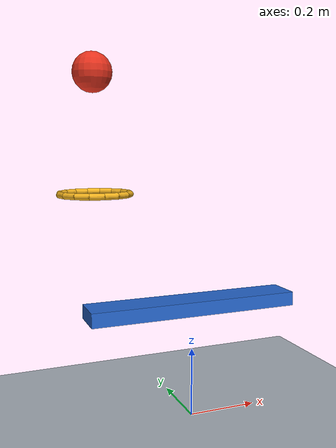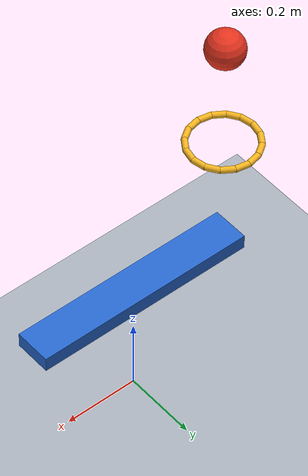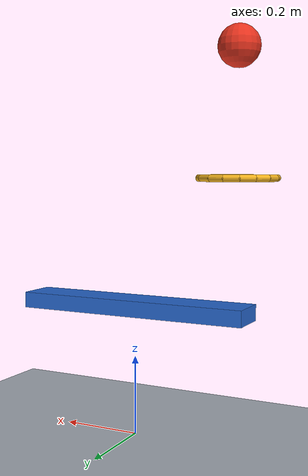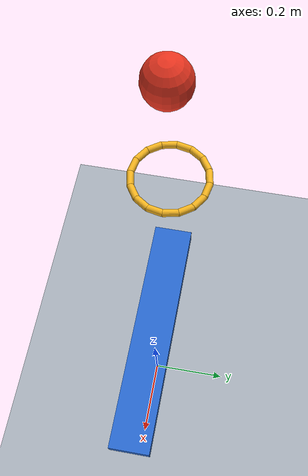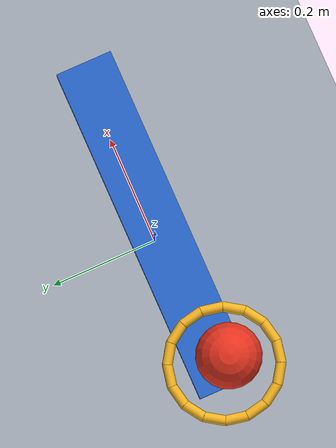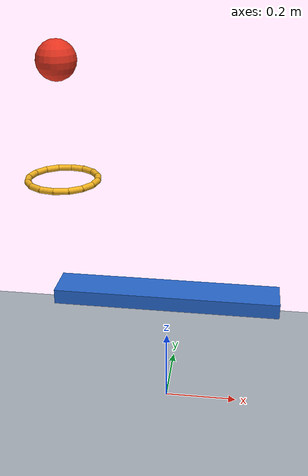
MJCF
<mujoco model="ball_ring_lever">
  <compiler angle="radian" autolimits="true"/>
  <option timestep="0.002" gravity="0 0 -9.81" integrator="implicitfast" solver="Newton" iterations="80" cone="elliptic"/>

  <visual>
    <headlight ambient="0.4 0.4 0.4" diffuse="0.7 0.7 0.7" specular="0.2 0.2 0.2"/>
  </visual>

  <worldbody>
    <light name="overhead_light" pos="0 -1 3" dir="0 0 -1"/>
    <camera name="overview" pos="1.5 -2 1.4" xyaxes="0.8 0.6 0 -0.3 0.4 0.8660254"/>

    <geom name="floor" type="plane" pos="0 0 0" size="3 3 0.1" friction="0.72 0.005 0.005" condim="6" solref="0.01 0.71565" solimp="0.99 0.99 0.001" rgba="0.65 0.68 0.72 1"/>

    <!-- Ball-center heights:
         initially 0.95 m, ring plane 0.65 m, first lever contact 0.40 m.
         Thus the vertical travel is 0.30 m to the ring, then another 0.25 m. -->
    <body name="ball1" pos="-0.27 0 0.95">
      <freejoint name="ball1_free"/>
      <geom name="ball1_sphere" type="sphere" size="0.05" mass="0.20" friction="0.72 0.005 0.005" condim="6" solref="0.01 0.71565" solimp="0.99 0.99 0.001" rgba="0.9 0.2 0.12 1"/>
    </body>

    <!-- Fixed horizontal ring: sixteen capsule segments.
         Centerline circumradius = 0.09 m.
         Tube radius = 0.09*cos(pi/16) - 0.08 m.
         The minimum clear diameter is therefore 0.16 m. -->
    <body name="ring1" pos="-0.27 0 0.65">
      <geom name="ring1_segment01" type="capsule" fromto="0.09 0 0 0.083149158 0.034441509 0" size="0.008270675" friction="0.72 0.005 0.005" condim="6" solref="0.01 0.71565" solimp="0.99 0.99 0.001" rgba="0.95 0.7 0.12 1"/>
      <geom name="ring1_segment02" type="capsule" fromto="0.083149158 0.034441509 0 0.063639610 0.063639610 0" size="0.008270675" friction="0.72 0.005 0.005" condim="6" solref="0.01 0.71565" solimp="0.99 0.99 0.001" rgba="0.95 0.7 0.12 1"/>
      <geom name="ring1_segment03" type="capsule" fromto="0.063639610 0.063639610 0 0.034441509 0.083149158 0" size="0.008270675" friction="0.72 0.005 0.005" condim="6" solref="0.01 0.71565" solimp="0.99 0.99 0.001" rgba="0.95 0.7 0.12 1"/>
      <geom name="ring1_segment04" type="capsule" fromto="0.034441509 0.083149158 0 0 0.09 0" size="0.008270675" friction="0.72 0.005 0.005" condim="6" solref="0.01 0.71565" solimp="0.99 0.99 0.001" rgba="0.95 0.7 0.12 1"/>
      <geom name="ring1_segment05" type="capsule" fromto="0 0.09 0 -0.034441509 0.083149158 0" size="0.008270675" friction="0.72 0.005 0.005" condim="6" solref="0.01 0.71565" solimp="0.99 0.99 0.001" rgba="0.95 0.7 0.12 1"/>
      <geom name="ring1_segment06" type="capsule" fromto="-0.034441509 0.083149158 0 -0.063639610 0.063639610 0" size="0.008270675" friction="0.72 0.005 0.005" condim="6" solref="0.01 0.71565" solimp="0.99 0.99 0.001" rgba="0.95 0.7 0.12 1"/>
      <geom name="ring1_segment07" type="capsule" fromto="-0.063639610 0.063639610 0 -0.083149158 0.034441509 0" size="0.008270675" friction="0.72 0.005 0.005" condim="6" solref="0.01 0.71565" solimp="0.99 0.99 0.001" rgba="0.95 0.7 0.12 1"/>
      <geom name="ring1_segment08" type="capsule" fromto="-0.083149158 0.034441509 0 -0.09 0 0" size="0.008270675" friction="0.72 0.005 0.005" condim="6" solref="0.01 0.71565" solimp="0.99 0.99 0.001" rgba="0.95 0.7 0.12 1"/>
      <geom name="ring1_segment09" type="capsule" fromto="-0.09 0 0 -0.083149158 -0.034441509 0" size="0.008270675" friction="0.72 0.005 0.005" condim="6" solref="0.01 0.71565" solimp="0.99 0.99 0.001" rgba="0.95 0.7 0.12 1"/>
      <geom name="ring1_segment10" type="capsule" fromto="-0.083149158 -0.034441509 0 -0.063639610 -0.063639610 0" size="0.008270675" friction="0.72 0.005 0.005" condim="6" solref="0.01 0.71565" solimp="0.99 0.99 0.001" rgba="0.95 0.7 0.12 1"/>
      <geom name="ring1_segment11" type="capsule" fromto="-0.063639610 -0.063639610 0 -0.034441509 -0.083149158 0" size="0.008270675" friction="0.72 0.005 0.005" condim="6" solref="0.01 0.71565" solimp="0.99 0.99 0.001" rgba="0.95 0.7 0.12 1"/>
      <geom name="ring1_segment12" type="capsule" fromto="-0.034441509 -0.083149158 0 0 -0.09 0" size="0.008270675" friction="0.72 0.005 0.005" condim="6" solref="0.01 0.71565" solimp="0.99 0.99 0.001" rgba="0.95 0.7 0.12 1"/>
      <geom name="ring1_segment13" type="capsule" fromto="0 -0.09 0 0.034441509 -0.083149158 0" size="0.008270675" friction="0.72 0.005 0.005" condim="6" solref="0.01 0.71565" solimp="0.99 0.99 0.001" rgba="0.95 0.7 0.12 1"/>
      <geom name="ring1_segment14" type="capsule" fromto="0.034441509 -0.083149158 0 0.063639610 -0.063639610 0" size="0.008270675" friction="0.72 0.005 0.005" condim="6" solref="0.01 0.71565" solimp="0.99 0.99 0.001" rgba="0.95 0.7 0.12 1"/>
      <geom name="ring1_segment15" type="capsule" fromto="0.063639610 -0.063639610 0 0.083149158 -0.034441509 0" size="0.008270675" friction="0.72 0.005 0.005" condim="6" solref="0.01 0.71565" solimp="0.99 0.99 0.001" rgba="0.95 0.7 0.12 1"/>
      <geom name="ring1_segment16" type="capsule" fromto="0.083149158 -0.034441509 0 0.09 0 0" size="0.008270675" friction="0.72 0.005 0.005" condim="6" solref="0.01 0.71565" solimp="0.99 0.99 0.001" rgba="0.95 0.7 0.12 1"/>
    </body>

    <!-- Uniform 0.60 x 0.10 x 0.04 m lever, hinged at its center.
         Its initial upper surface is z = 0.35 m. -->
    <body name="lever1" pos="0 0 0.33">
      <joint name="lever1_hinge" type="hinge" pos="0 0 0" axis="0 1 0" damping="0.04"/>
      <geom name="lever1_bar" type="box" size="0.30 0.05 0.02" mass="0.50" friction="0.72 0.005 0.005" condim="6" solref="0.01 0.71565" solimp="0.99 0.99 0.001" rgba="0.15 0.4 0.8 1"/>
    </body>
  </worldbody>

  <keyframe>
    <key name="start" time="0" qpos="-0.27 0 0.95 1 0 0 0 0" qvel="0 0 0 0 0 0 0"/>
  </keyframe>
</mujoco>
